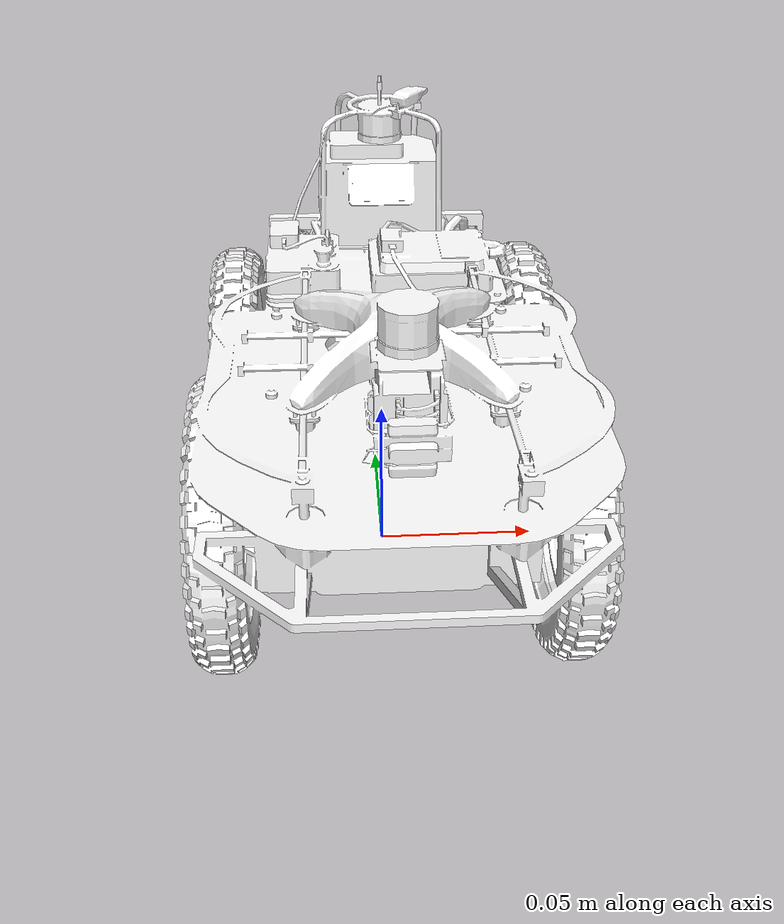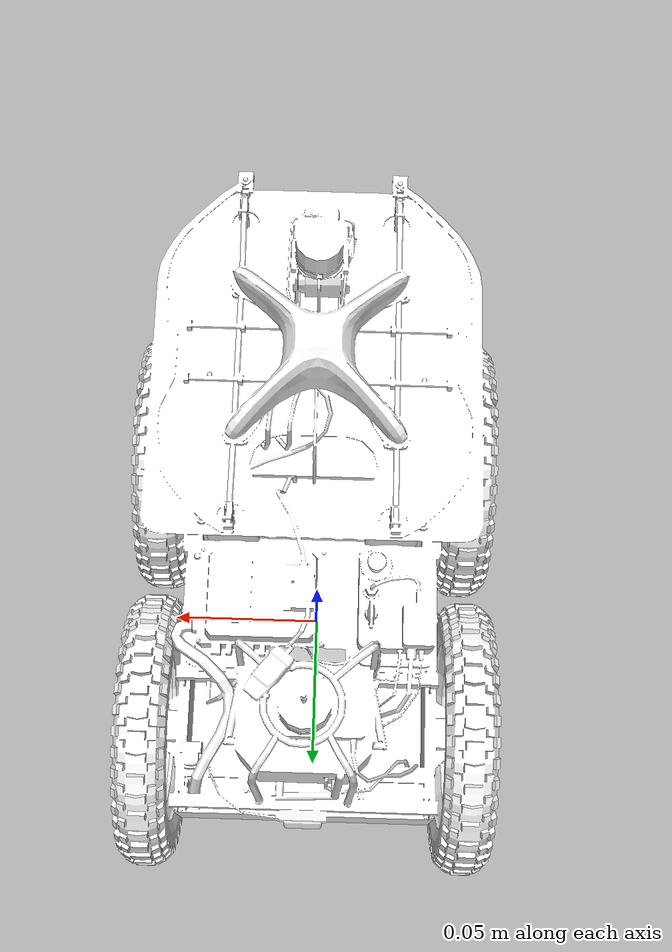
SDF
<?xml version="1.0"?>
<sdf version="1.9">
  <world name="empty_world">
    <include>
      <uri>model://explorer_r2_visuals_only</uri>
    </include>
  </world>
</sdf>

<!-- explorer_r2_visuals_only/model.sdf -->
<sdf version="1.6">
  <model name="r2">
    <static>false</static>
    <link name="base_link">
      <collision name="collision">
        <pose>0 0 0 0 0 0</pose>
        <geometry>
          <mesh>
            <uri>meshes/r2.dae</uri>
            <scale>1.0 1.0 1.0</scale>
          </mesh>
        </geometry>
      </collision>
      <visual name= "WheelBL_visual">
        <geometry>
          <mesh>
            <uri>meshes/r2.dae</uri>
            <submesh>
              <name>WheelBL</name>
              <center>false</center>
            </submesh>
          </mesh>
        </geometry>
        <material>
          <diffuse>1.0 1.0 1.0</diffuse>
          <specular>1.0 1.0 1.0</specular>
          <pbr>
            <metal>
              <albedo_map>materials/textures/R2_Albedo.jpg</albedo_map>
              <metalness_map>materials/textures/R2_Metalness.jpg</metalness_map>
              <roughness_map>materials/textures/R2_Roughness.jpg</roughness_map>
            </metal>
          </pbr>
          <!-- fallback to script if no PBR support-->
          <script>
            <uri>materials/scripts/</uri>
            <uri>materials/textures/</uri>
            <name>UrbanTile/R2_Diffuse</name>
          </script>
        </material>
      </visual>
      <visual name= "WheelFL_visual">
        <geometry>
          <mesh>
            <uri>meshes/r2.dae</uri>
            <submesh>
              <name>WheelFL</name>
              <center>false</center>
            </submesh>
          </mesh>
        </geometry>
        <material>
          <diffuse>1.0 1.0 1.0</diffuse>
          <specular>1.0 1.0 1.0</specular>
          <pbr>
            <metal>
              <albedo_map>materials/textures/R2_Albedo.jpg</albedo_map>
              <metalness_map>materials/textures/R2_Metalness.jpg</metalness_map>
              <roughness_map>materials/textures/R2_Roughness.jpg</roughness_map>
            </metal>
          </pbr>
          <!-- fallback to script if no PBR support-->
          <script>
            <uri>materials/scripts/</uri>
            <uri>materials/textures/</uri>
            <name>UrbanTile/R2_Diffuse</name>
          </script>
        </material>
      </visual>
      <visual name= "WheelBR_visual">
        <geometry>
          <mesh>
            <uri>meshes/r2.dae</uri>
            <submesh>
              <name>WheelBR</name>
              <center>false</center>
            </submesh>
          </mesh>
        </geometry>
        <material>
          <diffuse>1.0 1.0 1.0</diffuse>
          <specular>1.0 1.0 1.0</specular>
          <pbr>
            <metal>
              <albedo_map>materials/textures/R2_Albedo.jpg</albedo_map>
              <metalness_map>materials/textures/R2_Metalness.jpg</metalness_map>
              <roughness_map>materials/textures/R2_Roughness.jpg</roughness_map>
            </metal>
          </pbr>
          <!-- fallback to script if no PBR support-->
          <script>
            <uri>materials/scripts/</uri>
            <uri>materials/textures/</uri>
            <name>UrbanTile/R2_Diffuse</name>
          </script>
        </material>
      </visual>
      <visual name= "WheelFR_visual">
        <geometry>
          <mesh>
            <uri>meshes/r2.dae</uri>
            <submesh>
              <name>WheelFR</name>
              <center>false</center>
            </submesh>
          </mesh>
        </geometry>
        <material>
          <diffuse>1.0 1.0 1.0</diffuse>
          <specular>1.0 1.0 1.0</specular>
          <pbr>
            <metal>
              <albedo_map>materials/textures/R2_Albedo.jpg</albedo_map>
              <metalness_map>materials/textures/R2_Metalness.jpg</metalness_map>
              <roughness_map>materials/textures/R2_Roughness.jpg</roughness_map>
            </metal>
          </pbr>
          <!-- fallback to script if no PBR support-->
          <script>
            <uri>materials/scripts/</uri>
            <uri>materials/textures/</uri>
            <name>UrbanTile/R2_Diffuse</name>
          </script>
        </material>
      </visual>
      <visual name= "Body_visual">
        <geometry>
          <mesh>
            <uri>meshes/r2.dae</uri>
            <submesh>
              <name>Body</name>
              <center>false</center>
            </submesh>
          </mesh>
        </geometry>
        <material>
          <diffuse>1.0 1.0 1.0</diffuse>
          <specular>1.0 1.0 1.0</specular>
          <pbr>
            <metal>
              <albedo_map>materials/textures/R2_Albedo.jpg</albedo_map>
              <metalness_map>materials/textures/R2_Metalness.jpg</metalness_map>
              <roughness_map>materials/textures/R2_Roughness.jpg</roughness_map>
            </metal>
          </pbr>
          <!-- fallback to script if no PBR support-->
          <script>
            <uri>materials/scripts/</uri>
            <uri>materials/textures/</uri>
            <name>UrbanTile/R2_Diffuse</name>
          </script>
        </material>
      </visual>
    </link>
  </model>
</sdf>
